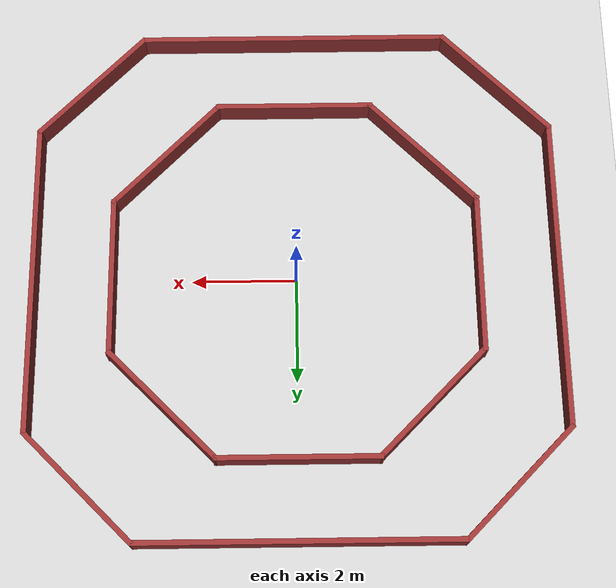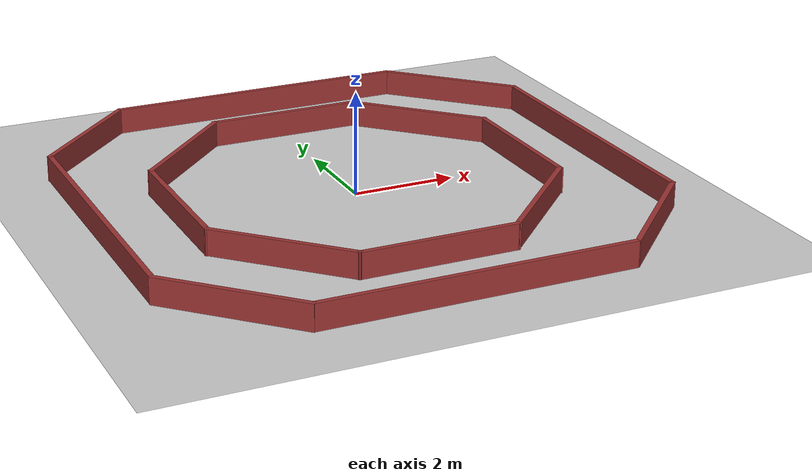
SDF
<?xml version="1.0" ?>
<sdf version="1.8">
  <world name="wall_following_world">

    <physics name="1ms" type="ignored">
      <max_step_size>0.001</max_step_size>
      <real_time_factor>1.0</real_time_factor>
    </physics>
    <plugin filename="gz-sim-physics-system" name="gz::sim::systems::Physics"/>
    <plugin filename="gz-sim-user-commands-system" name="gz::sim::systems::UserCommands"/>
    <plugin filename="gz-sim-scene-broadcaster-system" name="gz::sim::systems::SceneBroadcaster"/>
    <plugin filename="gz-sim-sensors-system" name="gz::sim::systems::Sensors">
      <render_engine>ogre2</render_engine>
    </plugin>

    <light type="directional" name="sun">
      <cast_shadows>true</cast_shadows>
      <pose>0 0 10 0 0 0</pose>
      <diffuse>0.8 0.8 0.8 1</diffuse>
      <specular>0.2 0.2 0.2 1</specular>
      <direction>-0.5 0.1 -0.9</direction>
    </light>

    <!-- PISO BASE -->
    <model name="ground_plane">
      <static>true</static>
      <link name="link">
        <collision name="collision"><geometry><plane><normal>0 0 1</normal><size>100 100</size></plane></geometry></collision>
        <visual name="visual">
          <geometry><plane><normal>0 0 1</normal><size>100 100</size></plane></geometry>
          <material><ambient>0.8 0.8 0.8 1</ambient><diffuse>0.8 0.8 0.8 1</diffuse></material>
        </visual>
      </link>
    </model>

    <!-- CIRCUITO OCTAGONAL (CÁLCULO EXACTO)        -->
    <model name="wall_track">
      <static>true</static>

      <!-- PAREDES EXTERIORES (Longitud exacta 6.0) -->
      <link name="outer_north">
        <pose>0 5 0.25 0 0 0</pose>
        <visual name="v"><geometry><box><size>6.0 0.1 0.5</size></box></geometry><material><ambient>0.6 0.2 0.2 1</ambient></material></visual>
        <collision name="c"><geometry><box><size>6.0 0.1 0.5</size></box></geometry></collision>
      </link>
      <link name="outer_south">
        <pose>0 -5 0.25 0 0 0</pose>
        <visual name="v"><geometry><box><size>6.0 0.1 0.5</size></box></geometry><material><ambient>0.6 0.2 0.2 1</ambient></material></visual>
        <collision name="c"><geometry><box><size>6.0 0.1 0.5</size></box></geometry></collision>
      </link>
      <link name="outer_east">
        <pose>5 0 0.25 0 0 1.5708</pose>
        <visual name="v"><geometry><box><size>6.0 0.1 0.5</size></box></geometry><material><ambient>0.6 0.2 0.2 1</ambient></material></visual>
        <collision name="c"><geometry><box><size>6.0 0.1 0.5</size></box></geometry></collision>
      </link>
      <link name="outer_west">
        <pose>-5 0 0.25 0 0 1.5708</pose>
        <visual name="v"><geometry><box><size>6.0 0.1 0.5</size></box></geometry><material><ambient>0.6 0.2 0.2 1</ambient></material></visual>
        <collision name="c"><geometry><box><size>6.0 0.1 0.5</size></box></geometry></collision>
      </link>

      <!-- Diagonales exteriores (Longitud exacta 2.9) -->
      <link name="outer_ne">
        <pose>4 4 0.25 0 0 -0.7854</pose>
        <visual name="v"><geometry><box><size>2.9 0.1 0.5</size></box></geometry><material><ambient>0.6 0.2 0.2 1</ambient></material></visual>
        <collision name="c"><geometry><box><size>2.9 0.1 0.5</size></box></geometry></collision>
      </link>
      <link name="outer_nw">
        <pose>-4 4 0.25 0 0 0.7854</pose>
        <visual name="v"><geometry><box><size>2.9 0.1 0.5</size></box></geometry><material><ambient>0.6 0.2 0.2 1</ambient></material></visual>
        <collision name="c"><geometry><box><size>2.9 0.1 0.5</size></box></geometry></collision>
      </link>
      <link name="outer_se">
        <pose>4 -4 0.25 0 0 0.7854</pose>
        <visual name="v"><geometry><box><size>2.9 0.1 0.5</size></box></geometry><material><ambient>0.6 0.2 0.2 1</ambient></material></visual>
        <collision name="c"><geometry><box><size>2.9 0.1 0.5</size></box></geometry></collision>
      </link>
      <link name="outer_sw">
        <pose>-4 -4 0.25 0 0 -0.7854</pose>
        <visual name="v"><geometry><box><size>2.9 0.1 0.5</size></box></geometry><material><ambient>0.6 0.2 0.2 1</ambient></material></visual>
        <collision name="c"><geometry><box><size>2.9 0.1 0.5</size></box></geometry></collision>
      </link>

      <!-- PAREDES INTERIORES (Longitud exacta 3.1) -->
      <link name="inner_north">
        <pose>0 3.5 0.25 0 0 0</pose>
        <visual name="v"><geometry><box><size>3.1 0.1 0.5</size></box></geometry><material><ambient>0.6 0.2 0.2 1</ambient></material></visual>
        <collision name="c"><geometry><box><size>3.1 0.1 0.5</size></box></geometry></collision>
      </link>
      <link name="inner_south">
        <pose>0 -3.5 0.25 0 0 0</pose>
        <visual name="v"><geometry><box><size>3.1 0.1 0.5</size></box></geometry><material><ambient>0.6 0.2 0.2 1</ambient></material></visual>
        <collision name="c"><geometry><box><size>3.1 0.1 0.5</size></box></geometry></collision>
      </link>
      <link name="inner_east">
        <pose>3.5 0 0.25 0 0 1.5708</pose>
        <visual name="v"><geometry><box><size>3.1 0.1 0.5</size></box></geometry><material><ambient>0.6 0.2 0.2 1</ambient></material></visual>
        <collision name="c"><geometry><box><size>3.1 0.1 0.5</size></box></geometry></collision>
      </link>
      <link name="inner_west">
        <pose>-3.5 0 0.25 0 0 1.5708</pose>
        <visual name="v"><geometry><box><size>3.1 0.1 0.5</size></box></geometry><material><ambient>0.6 0.2 0.2 1</ambient></material></visual>
        <collision name="c"><geometry><box><size>3.1 0.1 0.5</size></box></geometry></collision>
      </link>

      <!-- Diagonales interiores (Longitud exacta 2.9) -->
      <link name="inner_ne">
        <pose>2.5 2.5 0.25 0 0 -0.7854</pose>
        <visual name="v"><geometry><box><size>2.9 0.1 0.5</size></box></geometry><material><ambient>0.6 0.2 0.2 1</ambient></material></visual>
        <collision name="c"><geometry><box><size>2.9 0.1 0.5</size></box></geometry></collision>
      </link>
      <link name="inner_nw">
        <pose>-2.5 2.5 0.25 0 0 0.7854</pose>
        <visual name="v"><geometry><box><size>2.9 0.1 0.5</size></box></geometry><material><ambient>0.6 0.2 0.2 1</ambient></material></visual>
        <collision name="c"><geometry><box><size>2.9 0.1 0.5</size></box></geometry></collision>
      </link>
      <link name="inner_se">
        <pose>2.5 -2.5 0.25 0 0 0.7854</pose>
        <visual name="v"><geometry><box><size>2.9 0.1 0.5</size></box></geometry><material><ambient>0.6 0.2 0.2 1</ambient></material></visual>
        <collision name="c"><geometry><box><size>2.9 0.1 0.5</size></box></geometry></collision>
      </link>
      <link name="inner_sw">
        <pose>-2.5 -2.5 0.25 0 0 -0.7854</pose>
        <visual name="v"><geometry><box><size>2.9 0.1 0.5</size></box></geometry><material><ambient>0.6 0.2 0.2 1</ambient></material></visual>
        <collision name="c"><geometry><box><size>2.9 0.1 0.5</size></box></geometry></collision>
      </link>

    </model>
  </world>
</sdf>
